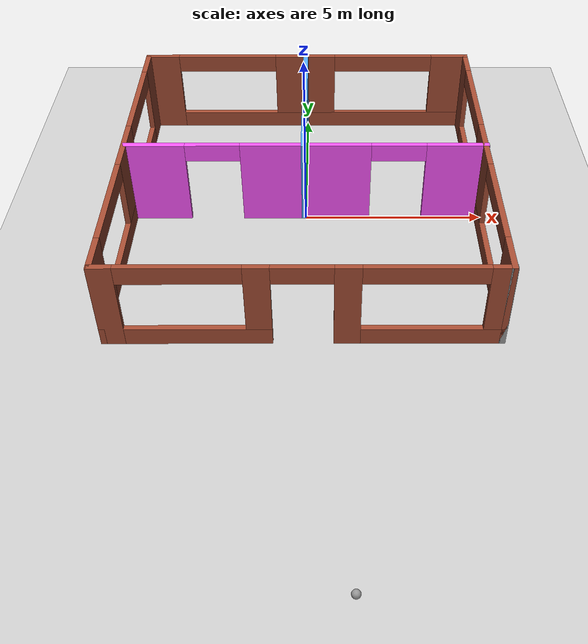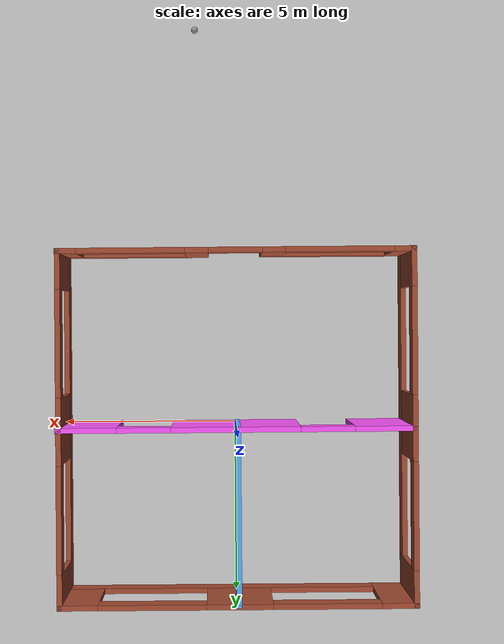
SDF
<?xml version="1.0" ?>

<sdf version="1.4">

  <world name="default">

    <include>
      <uri>model://ground_plane</uri>
    </include>

    <!-- Light source -->
    <include>
      <uri>model://sun</uri>
    </include>

    <!-- World camera -->
    <gui fullscreen='0'>
      <camera name='world_camera'>
        <pose>4.927360 -4.376610 3.740080 0.000000 0.275643 2.356190</pose>
        <view_controller>orbit</view_controller>
      </camera>
    </gui>

    <include>
      <uri>model://building</uri>
    </include>

    <model name='my_ball'>
      <link name='link_0'>
        <pose frame=''>0.04186 -0.131522 0 0 -0 0</pose>
        <inertial>
          <mass>1</mass>
          <inertia>
            <ixx>0.1</ixx>
            <ixy>0</ixy>
            <ixz>0</ixz>
            <iyy>0.1</iyy>
            <iyz>0</iyz>
            <izz>0.1</izz>
          </inertia>
          <pose frame=''>0 0 0 0 -0 0</pose>
        </inertial>
        <gravity>1</gravity>
        <self_collide>0</self_collide>
        <kinematic>0</kinematic>
        <visual name='visual'>
          <pose frame=''>0 0 0 0 -0 0</pose>
          <geometry>
            <sphere>
              <radius>0.1</radius>
            </sphere>
          </geometry>
          <material>
            <lighting>1</lighting>
            <script>
              <uri>file://media/materials/scripts/gazebo.material</uri>
              <name>Gazebo/Grey</name>
            </script>
            <shader type='pixel'>
              <normal_map>__default__</normal_map>
            </shader>
            <ambient>1 1 1 1</ambient>
            <diffuse>1 1 1 1</diffuse>
            <specular>1 1 1 1</specular>
            <emissive>1 1 1 1</emissive>
          </material>
          <transparency>0</transparency>
          <cast_shadows>1</cast_shadows>
        </visual>
        <collision name='collision'>
          <laser_retro>0</laser_retro>
          <max_contacts>10</max_contacts>
          <pose frame=''>0 0 0 0 -0 0</pose>
          <geometry>
            <sphere>
              <radius>0.1</radius>
            </sphere>
          </geometry>
          <surface>
            <friction>
              <ode>
                <mu>1</mu>
                <mu2>1</mu2>
                <fdir1>0 0 0</fdir1>
                <slip1>0</slip1>
                <slip2>0</slip2>
              </ode>
              <torsional>
                <coefficient>1</coefficient>
                <patch_radius>0</patch_radius>
                <surface_radius>0</surface_radius>
                <use_patch_radius>1</use_patch_radius>
                <ode>
                  <slip>0</slip>
                </ode>
              </torsional>
            </friction>
            <bounce>
              <restitution_coefficient>0</restitution_coefficient>
              <threshold>1e+06</threshold>
            </bounce>
            <contact>
              <collide_without_contact>0</collide_without_contact>
              <collide_without_contact_bitmask>1</collide_without_contact_bitmask>
              <collide_bitmask>1</collide_bitmask>
              <ode>
                <soft_cfm>0</soft_cfm>
                <soft_erp>0.2</soft_erp>
                <kp>1e+13</kp>
                <kd>1</kd>
                <max_vel>0.01</max_vel>
                <min_depth>0</min_depth>
              </ode>
              <bullet>
                <split_impulse>1</split_impulse>
                <split_impulse_penetration_threshold>-0.01</split_impulse_penetration_threshold>
                <soft_cfm>0</soft_cfm>
                <soft_erp>0.2</soft_erp>
                <kp>1e+13</kp>
                <kd>1</kd>
              </bullet>
            </contact>
          </surface>
        </collision>
      </link>
      <static>0</static>
      <allow_auto_disable>1</allow_auto_disable>
      <pose frame=''>1.07753 -11.4855 0 0 -0 0</pose>
    </model>

  </world>
</sdf>
